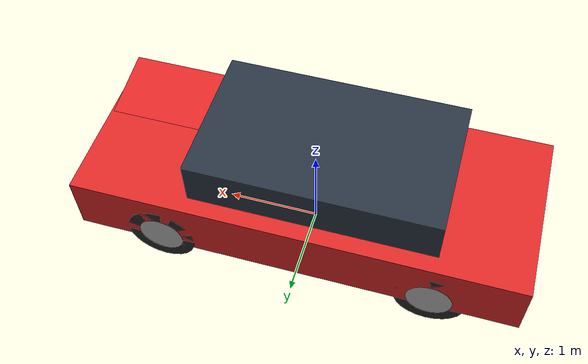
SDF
<?xml version="1.0" ?>
<sdf version="1.8">
  <model name="model_y">
    <!-- ==================== 車身底盤 (Chassis) ==================== -->
    <link name="chassis">
      <pose>0 0 0.37 0 0 0</pose>
      <inertial>
        <pose>0 0 0.1 0 0 0</pose>
        <mass>1740.0</mass>
        <inertia>
          <ixx>750.0</ixx><ixy>0</ixy><ixz>0</ixz>
          <iyy>2800.0</iyy><iyz>0</iyz>
          <izz>3100.0</izz>
        </inertia>
      </inertial>

      <!-- 底盤主要碰撞剛體 -->
      <collision name="chassis_collision">
        <pose>0 0 0.25 0 0 0</pose>
        <geometry>
          <box><size>4.75 1.92 0.70</size></box>
        </geometry>
        <surface>
          <friction>
            <ode><mu>0.8</mu><mu2>0.8</mu2></ode>
          </friction>
          <contact>
            <ode><min_depth>0.01</min_depth></ode>
          </contact>
        </surface>
      </collision>

      <!-- 車頂車窗碰撞剛體 -->
      <collision name="cabin_collision">
        <pose>-0.2 0 0.8 0 0 0</pose>
        <geometry>
          <box><size>2.6 1.5 0.55</size></box>
        </geometry>
      </collision>

      <!-- 車身外觀 (Model Y 標誌性酒紅/深紅色車漆) -->
      <visual name="body_visual">
        <pose>0 0 0.22 0 0 0</pose>
        <geometry>
          <box><size>4.75 1.88 0.65</size></box>
        </geometry>
        <material>
          <ambient>0.8 0.12 0.12 1</ambient>
          <diffuse>0.85 0.15 0.15 1</diffuse>
          <specular>0.6 0.6 0.6 1</specular>
        </material>
      </visual>

      <!-- 車頭引擎蓋與斜面前鼻 -->
      <visual name="hood_visual">
        <pose>1.7 0 0.35 -0.15 0 0</pose>
        <geometry>
          <box><size>1.3 1.8 0.35</size></box>
        </geometry>
        <material>
          <ambient>0.8 0.12 0.12 1</ambient>
          <diffuse>0.85 0.15 0.15 1</diffuse>
        </material>
      </visual>

      <!-- 座艙溫室玻璃 (風擋、車頂玻璃與車窗) -->
      <visual name="greenhouse_visual">
        <pose>-0.15 0 0.78 0 0 0</pose>
        <geometry>
          <box><size>2.6 1.52 0.52</size></box>
        </geometry>
        <material>
          <ambient>0.1 0.15 0.2 0.9</ambient>
          <diffuse>0.15 0.2 0.25 0.9</diffuse>
          <specular>0.8 0.8 0.8 1</specular>
        </material>
      </visual>

      <!-- 車內儀表板與內裝 (提供車內視角第一人稱臨場感) -->
      <visual name="dashboard_visual">
        <pose>0.8 0 0.62 0 0 0</pose>
        <geometry>
          <box><size>0.4 1.4 0.2</size></box>
        </geometry>
        <material>
          <ambient>0.08 0.08 0.08 1</ambient>
          <diffuse>0.1 0.1 0.1 1</diffuse>
        </material>
      </visual>

      <!-- 方向盤 (駕駛座前) -->
      <visual name="steering_wheel_visual">
        <pose>0.65 0.38 0.7 0 0.5 0</pose>
        <geometry>
          <cylinder><radius>0.18</radius><length>0.04</length></cylinder>
        </geometry>
        <material>
          <ambient>0.05 0.05 0.05 1</ambient>
          <diffuse>0.05 0.05 0.05 1</diffuse>
        </material>
      </visual>

      <!-- 車頭 LED 頭燈 -->
      <visual name="headlight_left">
        <pose>2.36 0.65 0.32 0 0 0</pose>
        <geometry><box><size>0.06 0.3 0.12</size></box></geometry>
        <material><ambient>1 1 1 1</ambient><diffuse>1 1 1 1</diffuse><emissive>0.8 0.8 0.8 1</emissive></material>
      </visual>
      <visual name="headlight_right">
        <pose>2.36 -0.65 0.32 0 0 0</pose>
        <geometry><box><size>0.06 0.3 0.12</size></box></geometry>
        <material><ambient>1 1 1 1</ambient><diffuse>1 1 1 1</diffuse><emissive>0.8 0.8 0.8 1</emissive></material>
      </visual>

      <!-- 車尾 LED 尾燈 -->
      <visual name="taillight_left">
        <pose>-2.36 0.65 0.4 0 0 0</pose>
        <geometry><box><size>0.06 0.35 0.08</size></box></geometry>
        <material><ambient>0.8 0 0 1</ambient><diffuse>0.9 0 0 1</diffuse><emissive>0.8 0 0 1</emissive></material>
      </visual>
      <visual name="taillight_right">
        <pose>-2.36 -0.65 0.4 0 0 0</pose>
        <geometry><box><size>0.06 0.35 0.08</size></box></geometry>
        <material><ambient>0.8 0 0 1</ambient><diffuse>0.9 0 0 1</diffuse><emissive>0.8 0 0 1</emissive></material>
      </visual>

      <!-- ==================== 三大相機感測器 ==================== -->
      <!-- 1. 車內駕駛座視角 (Driver Interior POV Cam) -->
      <sensor name="driver_cam" type="camera">
        <pose>0.4 0.38 0.78 0 0 0</pose>
        <topic>/model_y/view_driver</topic>
        <camera>
          <horizontal_fov>1.4</horizontal_fov>
          <image><width>1280</width><height>720</height></image>
          <clip><near>0.05</near><far>500</far></clip>
        </camera>
        <always_on>1</always_on>
        <update_rate>30</update_rate>
      </sensor>

      <!-- 2. 第三人稱追蹤視角 (Third-person Chase Cam) -->
      <sensor name="chase_cam" type="camera">
        <pose>-5.0 0.0 2.2 0 0.25 0</pose>
        <topic>/model_y/view_chase</topic>
        <camera>
          <horizontal_fov>1.5</horizontal_fov>
          <image><width>1280</width><height>720</height></image>
          <clip><near>0.1</near><far>500</far></clip>
        </camera>
        <always_on>1</always_on>
        <update_rate>30</update_rate>
      </sensor>

      <!-- 3. 車頭第一人稱視角 (Front Hood POV Cam) -->
      <sensor name="hood_cam" type="camera">
        <pose>2.1 0.0 0.45 0 0 0</pose>
        <topic>/model_y/view_hood</topic>
        <camera>
          <horizontal_fov>1.6</horizontal_fov>
          <image><width>1280</width><height>720</height></image>
          <clip><near>0.05</near><far>500</far></clip>
        </camera>
        <always_on>1</always_on>
        <update_rate>30</update_rate>
      </sensor>
    </link>

    <!-- ==================== 前轉向節 (Steering Knuckles) ==================== -->
    <link name="front_left_steering_link">
      <pose>1.445 0.815 0.37 0 0 0</pose>
      <inertial>
        <mass>10.0</mass>
        <inertia>
          <ixx>0.05</ixx><ixy>0</ixy><ixz>0</ixz>
          <iyy>0.05</iyy><iyz>0</iyz>
          <izz>0.05</izz>
        </inertia>
      </inertial>
    </link>

    <joint name="front_left_steering_joint" type="revolute">
      <parent>chassis</parent>
      <child>front_left_steering_link</child>
      <axis>
        <xyz>0 0 1</xyz>
        <limit>
          <lower>-0.6</lower>
          <upper>0.6</upper>
          <effort>1000.0</effort>
          <velocity>2.0</velocity>
        </limit>
      </axis>
    </joint>

    <link name="front_right_steering_link">
      <pose>1.445 -0.815 0.37 0 0 0</pose>
      <inertial>
        <mass>10.0</mass>
        <inertia>
          <ixx>0.05</ixx><ixy>0</ixy><ixz>0</ixz>
          <iyy>0.05</iyy><iyz>0</iyz>
          <izz>0.05</izz>
        </inertia>
      </inertial>
    </link>

    <joint name="front_right_steering_joint" type="revolute">
      <parent>chassis</parent>
      <child>front_right_steering_link</child>
      <axis>
        <xyz>0 0 1</xyz>
        <limit>
          <lower>-0.6</lower>
          <upper>0.6</upper>
          <effort>1000.0</effort>
          <velocity>2.0</velocity>
        </limit>
      </axis>
    </joint>

    <!-- ==================== 四組車輪 (Wheels) ==================== -->
    <!-- 前左輪 -->
    <link name="front_left_wheel">
      <pose>1.445 0.815 0.37 -1.5707963 0 0</pose>
      <inertial>
        <mass>55.0</mass>
        <inertia>
          <ixx>1.9</ixx><ixy>0</ixy><ixz>0</ixz>
          <iyy>1.9</iyy><iyz>0</iyz>
          <izz>3.7</izz>
        </inertia>
      </inertial>
      <collision name="col">
        <geometry><cylinder><radius>0.37</radius><length>0.25</length></cylinder></geometry>
        <surface>
          <friction>
            <ode><mu>1.1</mu><mu2>1.1</mu2></ode>
          </friction>
          <contact>
            <ode><min_depth>0.005</min_depth><kp>1e7</kp><kd>1e3</kd></ode>
          </contact>
        </surface>
      </collision>
      <visual name="vis">
        <geometry><cylinder><radius>0.37</radius><length>0.25</length></cylinder></geometry>
        <material><ambient>0.15 0.15 0.15 1</ambient><diffuse>0.15 0.15 0.15 1</diffuse></material>
      </visual>
      <visual name="rim">
        <geometry><cylinder><radius>0.24</radius><length>0.252</length></cylinder></geometry>
        <material><ambient>0.7 0.7 0.7 1</ambient><diffuse>0.7 0.7 0.7 1</diffuse></material>
      </visual>
    </link>

    <joint name="front_left_wheel_joint" type="revolute">
      <parent>front_left_steering_link</parent>
      <child>front_left_wheel</child>
      <axis>
        <xyz>0 0 1</xyz>
        <limit><effort>500.0</effort><velocity>80.0</velocity></limit>
      </axis>
    </joint>

    <!-- 前右輪 -->
    <link name="front_right_wheel">
      <pose>1.445 -0.815 0.37 -1.5707963 0 0</pose>
      <inertial>
        <mass>55.0</mass>
        <inertia>
          <ixx>1.9</ixx><ixy>0</ixy><ixz>0</ixz>
          <iyy>1.9</iyy><iyz>0</iyz>
          <izz>3.7</izz>
        </inertia>
      </inertial>
      <collision name="col">
        <geometry><cylinder><radius>0.37</radius><length>0.25</length></cylinder></geometry>
        <surface>
          <friction>
            <ode><mu>1.1</mu><mu2>1.1</mu2></ode>
          </friction>
          <contact>
            <ode><min_depth>0.005</min_depth><kp>1e7</kp><kd>1e3</kd></ode>
          </contact>
        </surface>
      </collision>
      <visual name="vis">
        <geometry><cylinder><radius>0.37</radius><length>0.25</length></cylinder></geometry>
        <material><ambient>0.15 0.15 0.15 1</ambient><diffuse>0.15 0.15 0.15 1</diffuse></material>
      </visual>
      <visual name="rim">
        <geometry><cylinder><radius>0.24</radius><length>0.252</length></cylinder></geometry>
        <material><ambient>0.7 0.7 0.7 1</ambient><diffuse>0.7 0.7 0.7 1</diffuse></material>
      </visual>
    </link>

    <joint name="front_right_wheel_joint" type="revolute">
      <parent>front_right_steering_link</parent>
      <child>front_right_wheel</child>
      <axis>
        <xyz>0 0 1</xyz>
        <limit><effort>500.0</effort><velocity>80.0</velocity></limit>
      </axis>
    </joint>

    <!-- 後左輪 -->
    <link name="rear_left_wheel">
      <pose>-1.445 0.815 0.37 -1.5707963 0 0</pose>
      <inertial>
        <mass>55.0</mass>
        <inertia>
          <ixx>1.9</ixx><ixy>0</ixy><ixz>0</ixz>
          <iyy>1.9</iyy><iyz>0</iyz>
          <izz>3.7</izz>
        </inertia>
      </inertial>
      <collision name="col">
        <geometry><cylinder><radius>0.37</radius><length>0.25</length></cylinder></geometry>
        <surface>
          <friction>
            <ode><mu>1.1</mu><mu2>1.1</mu2></ode>
          </friction>
          <contact>
            <ode><min_depth>0.005</min_depth><kp>1e7</kp><kd>1e3</kd></ode>
          </contact>
        </surface>
      </collision>
      <visual name="vis">
        <geometry><cylinder><radius>0.37</radius><length>0.25</length></cylinder></geometry>
        <material><ambient>0.15 0.15 0.15 1</ambient><diffuse>0.15 0.15 0.15 1</diffuse></material>
      </visual>
      <visual name="rim">
        <geometry><cylinder><radius>0.24</radius><length>0.252</length></cylinder></geometry>
        <material><ambient>0.7 0.7 0.7 1</ambient><diffuse>0.7 0.7 0.7 1</diffuse></material>
      </visual>
    </link>

    <joint name="rear_left_wheel_joint" type="revolute">
      <parent>chassis</parent>
      <child>rear_left_wheel</child>
      <axis>
        <xyz>0 0 1</xyz>
        <limit><effort>2000.0</effort><velocity>80.0</velocity></limit>
      </axis>
    </joint>

    <!-- 後右輪 -->
    <link name="rear_right_wheel">
      <pose>-1.445 -0.815 0.37 -1.5707963 0 0</pose>
      <inertial>
        <mass>55.0</mass>
        <inertia>
          <ixx>1.9</ixx><ixy>0</ixy><ixz>0</ixz>
          <iyy>1.9</iyy><iyz>0</iyz>
          <izz>3.7</izz>
        </inertia>
      </inertial>
      <collision name="col">
        <geometry><cylinder><radius>0.37</radius><length>0.25</length></cylinder></geometry>
        <surface>
          <friction>
            <ode><mu>1.1</mu><mu2>1.1</mu2></ode>
          </friction>
          <contact>
            <ode><min_depth>0.005</min_depth><kp>1e7</kp><kd>1e3</kd></ode>
          </contact>
        </surface>
      </collision>
      <visual name="vis">
        <geometry><cylinder><radius>0.37</radius><length>0.25</length></cylinder></geometry>
        <material><ambient>0.15 0.15 0.15 1</ambient><diffuse>0.15 0.15 0.15 1</diffuse></material>
      </visual>
      <visual name="rim">
        <geometry><cylinder><radius>0.24</radius><length>0.252</length></cylinder></geometry>
        <material><ambient>0.7 0.7 0.7 1</ambient><diffuse>0.7 0.7 0.7 1</diffuse></material>
      </visual>
    </link>

    <joint name="rear_right_wheel_joint" type="revolute">
      <parent>chassis</parent>
      <child>rear_right_wheel</child>
      <axis>
        <xyz>0 0 1</xyz>
        <limit><effort>2000.0</effort><velocity>80.0</velocity></limit>
      </axis>
    </joint>

    <!-- ==================== 阿克曼轉向外掛 (Ackermann Steering) ==================== -->
    <plugin filename="gz-sim-ackermann-steering-system" name="gz::sim::systems::AckermannSteering">
      <topic>/cmd_vel</topic>
      <odom_topic>/odom</odom_topic>
      <left_joint>rear_left_wheel_joint</left_joint>
      <right_joint>rear_right_wheel_joint</right_joint>
      <left_steering_joint>front_left_steering_joint</left_steering_joint>
      <right_steering_joint>front_right_steering_joint</right_steering_joint>
      <kingpin_width>1.63</kingpin_width>
      <steering_limit>0.6</steering_limit>
      <wheel_base>2.89</wheel_base>
      <wheel_separation>1.63</wheel_separation>
      <wheel_radius>0.37</wheel_radius>
      <min_turning_radius>5.8</min_turning_radius>
      <max_velocity>25.0</max_velocity>
      <max_linear_acceleration>5.0</max_linear_acceleration>
      <max_angular_acceleration>4.0</max_angular_acceleration>
      <frame_id>odom</frame_id>
      <child_frame_id>model_y/chassis</child_frame_id>
    </plugin>
  </model>
</sdf>
